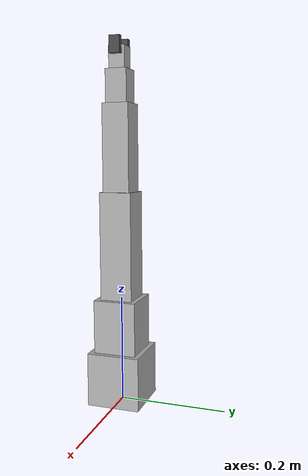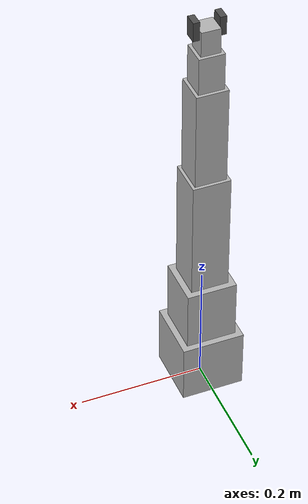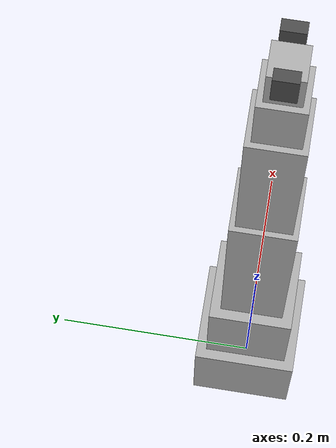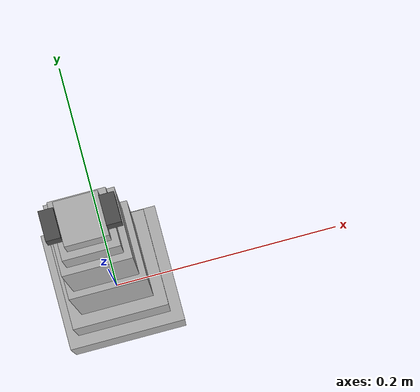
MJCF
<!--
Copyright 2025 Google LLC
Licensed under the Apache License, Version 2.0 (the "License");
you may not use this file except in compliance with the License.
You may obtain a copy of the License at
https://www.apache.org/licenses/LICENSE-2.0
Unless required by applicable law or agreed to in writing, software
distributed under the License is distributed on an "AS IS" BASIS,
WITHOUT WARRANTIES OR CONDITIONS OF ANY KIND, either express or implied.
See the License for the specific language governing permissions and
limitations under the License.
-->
<mujoco model="so100_arm">
  <compiler angle="radian" autolimits="true"/>

  <option cone="elliptic" impratio="10"/>

  <asset>
    <!-- Basic materials for SO100 -->
    <material name="so100_material" rgba="0.7 0.7 0.7 1.0"/>
    <material name="gripper_material" rgba="0.3 0.3 0.3 1.0"/>
  </asset>

  <default>
    <default class="so100">
      <joint axis="0 0 1" actuatorfrcrange="-50 50"/>
      <site group="4"/>
      <default class="rotation">
        <joint axis="0 0 1" range="-3.14159 3.14159" damping="5.0"/>
        <position ctrlrange="-3.14159 3.14159" kp="50"/>
      </default>
      <default class="pitch">
        <joint axis="0 1 0" range="-1.57 1.57" damping="10.0"/>
        <position ctrlrange="-1.57 1.57" kp="100"/>
      </default>
      <default class="elbow">
        <joint axis="0 1 0" range="-2.0 2.0" damping="8.0"/>
        <position ctrlrange="-2.0 2.0" kp="80"/>
      </default>
      <default class="wrist_pitch">
        <joint axis="0 1 0" range="-1.57 1.57" damping="5.0"/>
        <position ctrlrange="-1.57 1.57" kp="40"/>
      </default>
      <default class="wrist_roll">
        <joint axis="1 0 0" range="-3.14159 3.14159" damping="2.0"/>
        <position ctrlrange="-3.14159 3.14159" kp="20"/>
      </default>
      <default class="jaw">
        <joint axis="0 0 1" range="0 0.08" damping="1.0"/>
        <position ctrlrange="0 0.08" kp="100"/>
      </default>
      <default class="visual">
        <geom type="box" contype="0" conaffinity="0" density="0" group="2" material="so100_material"/>
      </default>
      <default class="collision">
        <geom group="3" type="box"/>
      </default>
    </default>
  </default>

  <worldbody>
    <camera name="so100_pov" pos="0 -1.0 0.5" xyaxes="1 0 0 0 0.5 0.8"/>
    <camera name="so100_top" pos="0 0 1.2" xyaxes="1 0 0 0 1 0"/>

    <body name="so100/base_link" childclass="so100" pos="0 0 0">
      <inertial pos="0 0 0.05" mass="2.0" diaginertia="0.01 0.01 0.01"/>
      <geom name="base_visual" class="visual" size="0.05 0.05 0.05" pos="0 0 0.05"/>
      <geom name="base_collision" class="collision" size="0.05 0.05 0.05" pos="0 0 0.05"/>

      <body name="so100/shoulder_link" pos="0 0 0.1">
        <inertial pos="0 0 0.05" mass="1.5" diaginertia="0.005 0.005 0.005"/>
        <joint name="so100/rotation" class="rotation"/>
        <geom name="shoulder_visual" class="visual" size="0.04 0.04 0.05" pos="0 0 0.05"/>
        <geom name="shoulder_collision" class="collision" size="0.04 0.04 0.05" pos="0 0 0.05"/>

        <body name="so100/upper_arm_link" pos="0 0 0.1">
          <inertial pos="0 0 0.1" mass="1.2" diaginertia="0.01 0.01 0.002"/>
          <joint name="so100/pitch" class="pitch"/>
          <geom name="upper_arm_visual" class="visual" size="0.03 0.03 0.1" pos="0 0 0.1"/>
          <geom name="upper_arm_collision" class="collision" size="0.03 0.03 0.1" pos="0 0 0.1"/>

          <body name="so100/forearm_link" pos="0 0 0.2">
            <inertial pos="0 0 0.08" mass="0.8" diaginertia="0.005 0.005 0.001"/>
            <joint name="so100/elbow" class="elbow"/>
            <geom name="forearm_visual" class="visual" size="0.025 0.025 0.08" pos="0 0 0.08"/>
            <geom name="forearm_collision" class="collision" size="0.025 0.025 0.08" pos="0 0 0.08"/>

            <body name="so100/wrist_link" pos="0 0 0.16">
              <inertial pos="0 0 0.03" mass="0.4" diaginertia="0.001 0.001 0.001"/>
              <joint name="so100/wrist_pitch" class="wrist_pitch"/>
              <geom name="wrist_visual" class="visual" size="0.02 0.02 0.03" pos="0 0 0.03"/>
              <geom name="wrist_collision" class="collision" size="0.02 0.02 0.03" pos="0 0 0.03"/>

              <body name="so100/hand_link" pos="0 0 0.06">
                <inertial pos="0 0 0.02" mass="0.2" diaginertia="0.0005 0.0005 0.0005"/>
                <joint name="so100/wrist_roll" class="wrist_roll"/>
                <geom name="hand_visual" class="visual" size="0.015 0.015 0.02" pos="0 0 0.02"/>
                <geom name="hand_collision" class="collision" size="0.015 0.015 0.02" pos="0 0 0.02"/>

                <site name="so100/gripper" pos="0 0 0.04" group="5"/>

                <body name="so100/gripper_left" pos="0.02 0 0.04">
                  <inertial pos="0 0 0.015" mass="0.05" diaginertia="0.0001 0.0001 0.0001"/>
                  <joint name="so100/jaw_left" class="jaw"/>
                  <geom name="gripper_left_visual" class="visual" size="0.005 0.01 0.015" material="gripper_material"/>
                  <geom name="gripper_left_collision" class="collision" size="0.005 0.01 0.015"/>
                </body>

                <body name="so100/gripper_right" pos="-0.02 0 0.04">
                  <inertial pos="0 0 0.015" mass="0.05" diaginertia="0.0001 0.0001 0.0001"/>
                  <joint name="so100/jaw_right" class="jaw"/>
                  <geom name="gripper_right_visual" class="visual" size="0.005 0.01 0.015" material="gripper_material"/>
                  <geom name="gripper_right_collision" class="collision" size="0.005 0.01 0.015"/>
                </body>
              </body>
            </body>
          </body>
        </body>
      </body>
    </body>
  </worldbody>

  <contact>
    <exclude body1="so100/base_link" body2="so100/shoulder_link"/>
  </contact>

  <equality>
    <joint joint1="so100/jaw_left" joint2="so100/jaw_right" polycoef="0 1 0 0 0"/>
  </equality>

  <actuator>
    <position name="so100/rotation_actuator" joint="so100/rotation" class="rotation"/>
    <position name="so100/pitch_actuator" joint="so100/pitch" class="pitch"/>
    <position name="so100/elbow_actuator" joint="so100/elbow" class="elbow"/>
    <position name="so100/wrist_pitch_actuator" joint="so100/wrist_pitch" class="wrist_pitch"/>
    <position name="so100/wrist_roll_actuator" joint="so100/wrist_roll" class="wrist_roll"/>
    <position name="so100/jaw_actuator" joint="so100/jaw_left" class="jaw"/>
  </actuator>
</mujoco>
